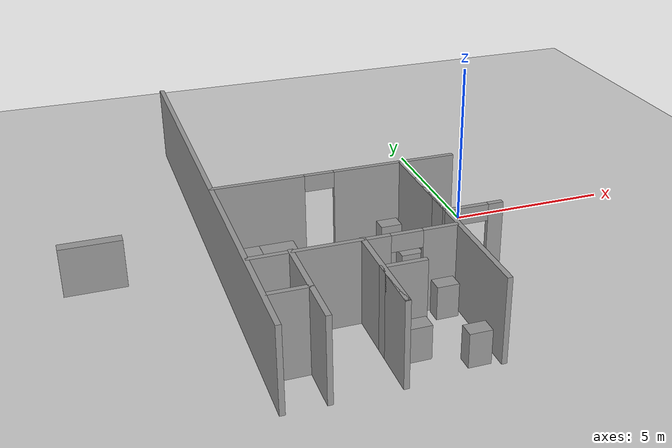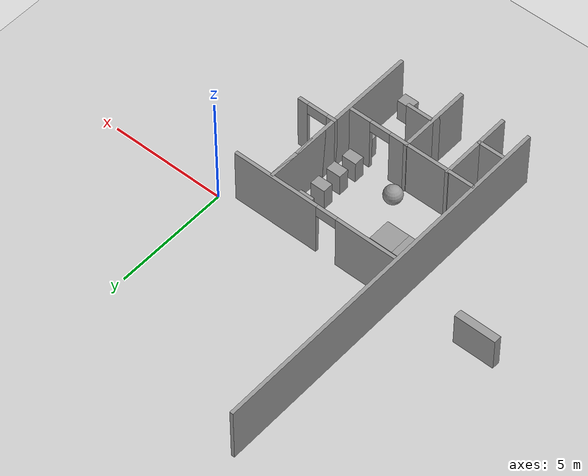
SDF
<sdf version="1.7">
 <world name="default">
  <model name="ground_plane">
   <static>1</static>
   <link name="link">
    <collision name="collision">
     <geometry><plane><normal>0 0 1</normal><size>100 100</size></plane></geometry>
     <surface>
      <contact><collide_bitmask>65535</collide_bitmask></contact>
      <friction><ode><mu>100</mu><mu2>50</mu2></ode></friction>
     </surface>
    </collision>
    <visual name="visual">
     <cast_shadows>0</cast_shadows>
     <geometry><plane><normal>0 0 1</normal><size>100 100</size></plane></geometry>
     <material>
      <script><uri>file://media/materials/scripts/gazebo.material</uri><name>Gazebo/Grey</name></script>
     </material>
    </visual>
   </link>
  </model>
  <model name="Untitled">
   <link name="Wall_23">
    <pose>-4.29593 -0.649108 0 0 -0 0</pose>
    <visual name="Wall_23_Visual_0">
     <pose>-2.35479 0 1.25 0 -0 0</pose>
     <geometry><box><size>2.79042 0.15 2.5</size></box></geometry>
     <material>
      <script><uri>file://media/materials/scripts/gazebo.material</uri><name>Gazebo/Grey</name></script>
      <ambient>1 1 1 1</ambient>
      <shader type="pixel"/>
     </material>
     <meta><layer>0</layer></meta>
    </visual>
    <visual name="Wall_23_Visual_1">
     <pose>1.84521 0 1.25 0 -0 0</pose>
     <geometry><box><size>3.80958 0.15 2.5</size></box></geometry>
     <material>
      <script><uri>file://media/materials/scripts/gazebo.material</uri><name>Gazebo/Grey</name></script>
      <ambient>1 1 1 1</ambient>
      <shader type="pixel"/>
     </material>
     <meta><layer>0</layer></meta>
    </visual>
    <visual name="Wall_23_Visual_2">
     <pose>-0.509576 0 2.25 0 -0 0</pose>
     <geometry><box><size>0.9 0.15 0.5</size></box></geometry>
     <material>
      <script><uri>file://media/materials/scripts/gazebo.material</uri><name>Gazebo/Grey</name></script>
      <ambient>1 1 1 1</ambient>
      <shader type="pixel"/>
     </material>
     <meta><layer>0</layer></meta>
    </visual>
    <collision name="Wall_23_Collision_0">
     <pose>-2.35479 0 1.25 0 -0 0</pose>
     <geometry><box><size>2.79042 0.15 2.5</size></box></geometry>
     <surface>
      <friction>
       <ode><mu>1</mu><mu2>1</mu2><fdir1>0 0 0</fdir1><slip1>0</slip1><slip2>0</slip2></ode>
       <torsional>
        <coefficient>1</coefficient>
        <patch_radius>0</patch_radius>
        <surface_radius>0</surface_radius>
        <use_patch_radius>1</use_patch_radius>
        <ode><slip>0</slip></ode>
       </torsional>
      </friction>
      <bounce><restitution_coefficient>0</restitution_coefficient><threshold>1e+06</threshold></bounce>
      <contact>
       <collide_without_contact>0</collide_without_contact>
       <collide_without_contact_bitmask>1</collide_without_contact_bitmask>
       <collide_bitmask>1</collide_bitmask>
       <ode>
        <soft_cfm>0</soft_cfm>
        <soft_erp>0.2</soft_erp>
        <kp>1e+13</kp>
        <kd>1</kd>
        <max_vel>0.01</max_vel>
        <min_depth>0</min_depth>
       </ode>
       <bullet>
        <split_impulse>1</split_impulse>
        <split_impulse_penetration_threshold>-0.01</split_impulse_penetration_threshold>
        <soft_cfm>0</soft_cfm>
        <soft_erp>0.2</soft_erp>
        <kp>1e+13</kp>
        <kd>1</kd>
       </bullet>
      </contact>
     </surface>
    </collision>
    <collision name="Wall_23_Collision_1">
     <pose>1.84521 0 1.25 0 -0 0</pose>
     <geometry><box><size>3.80958 0.15 2.5</size></box></geometry>
     <surface>
      <friction>
       <ode><mu>1</mu><mu2>1</mu2><fdir1>0 0 0</fdir1><slip1>0</slip1><slip2>0</slip2></ode>
       <torsional>
        <coefficient>1</coefficient>
        <patch_radius>0</patch_radius>
        <surface_radius>0</surface_radius>
        <use_patch_radius>1</use_patch_radius>
        <ode><slip>0</slip></ode>
       </torsional>
      </friction>
      <bounce><restitution_coefficient>0</restitution_coefficient><threshold>1e+06</threshold></bounce>
      <contact>
       <collide_without_contact>0</collide_without_contact>
       <collide_without_contact_bitmask>1</collide_without_contact_bitmask>
       <collide_bitmask>1</collide_bitmask>
       <ode>
        <soft_cfm>0</soft_cfm>
        <soft_erp>0.2</soft_erp>
        <kp>1e+13</kp>
        <kd>1</kd>
        <max_vel>0.01</max_vel>
        <min_depth>0</min_depth>
       </ode>
       <bullet>
        <split_impulse>1</split_impulse>
        <split_impulse_penetration_threshold>-0.01</split_impulse_penetration_threshold>
        <soft_cfm>0</soft_cfm>
        <soft_erp>0.2</soft_erp>
        <kp>1e+13</kp>
        <kd>1</kd>
       </bullet>
      </contact>
     </surface>
    </collision>
    <collision name="Wall_23_Collision_2">
     <pose>-0.509576 0 2.25 0 -0 0</pose>
     <geometry><box><size>0.9 0.15 0.5</size></box></geometry>
     <surface>
      <friction>
       <ode><mu>1</mu><mu2>1</mu2><fdir1>0 0 0</fdir1><slip1>0</slip1><slip2>0</slip2></ode>
       <torsional>
        <coefficient>1</coefficient>
        <patch_radius>0</patch_radius>
        <surface_radius>0</surface_radius>
        <use_patch_radius>1</use_patch_radius>
        <ode><slip>0</slip></ode>
       </torsional>
      </friction>
      <bounce><restitution_coefficient>0</restitution_coefficient><threshold>1e+06</threshold></bounce>
      <contact>
       <collide_without_contact>0</collide_without_contact>
       <collide_without_contact_bitmask>1</collide_without_contact_bitmask>
       <collide_bitmask>1</collide_bitmask>
       <ode>
        <soft_cfm>0</soft_cfm>
        <soft_erp>0.2</soft_erp>
        <kp>1e+13</kp>
        <kd>1</kd>
        <max_vel>0.01</max_vel>
        <min_depth>0</min_depth>
       </ode>
       <bullet>
        <split_impulse>1</split_impulse>
        <split_impulse_penetration_threshold>-0.01</split_impulse_penetration_threshold>
        <soft_cfm>0</soft_cfm>
        <soft_erp>0.2</soft_erp>
        <kp>1e+13</kp>
        <kd>1</kd>
       </bullet>
      </contact>
     </surface>
    </collision>
   </link>
   <link name="Wall_26">
    <pose>-1.42928 -4.08053 0 0 -0 3.14159</pose>
    <visual name="Wall_26_Visual_0">
     <pose>-0.650197 0 1.25 0 -0 0</pose>
     <geometry><box><size>0.449606 0.15 2.5</size></box></geometry>
     <material>
      <script><uri>file://media/materials/scripts/gazebo.material</uri><name>Gazebo/Grey</name></script>
      <ambient>1 1 1 1</ambient>
      <shader type="pixel"/>
     </material>
     <meta><layer>0</layer></meta>
    </visual>
    <visual name="Wall_26_Visual_1">
     <pose>0.674803 0 1.25 0 -0 0</pose>
     <geometry><box><size>0.400394 0.15 2.5</size></box></geometry>
     <material>
      <script><uri>file://media/materials/scripts/gazebo.material</uri><name>Gazebo/Grey</name></script>
      <ambient>1 1 1 1</ambient>
      <shader type="pixel"/>
     </material>
     <meta><layer>0</layer></meta>
    </visual>
    <visual name="Wall_26_Visual_2">
     <pose>0.024606 0 2.25 0 -0 0</pose>
     <geometry><box><size>0.9 0.15 0.5</size></box></geometry>
     <material>
      <script><uri>file://media/materials/scripts/gazebo.material</uri><name>Gazebo/Grey</name></script>
      <ambient>1 1 1 1</ambient>
      <shader type="pixel"/>
     </material>
     <meta><layer>0</layer></meta>
    </visual>
    <collision name="Wall_26_Collision_0">
     <pose>-0.650197 0 1.25 0 -0 0</pose>
     <geometry><box><size>0.449606 0.15 2.5</size></box></geometry>
     <surface>
      <friction>
       <ode><mu>1</mu><mu2>1</mu2><fdir1>0 0 0</fdir1><slip1>0</slip1><slip2>0</slip2></ode>
       <torsional>
        <coefficient>1</coefficient>
        <patch_radius>0</patch_radius>
        <surface_radius>0</surface_radius>
        <use_patch_radius>1</use_patch_radius>
        <ode><slip>0</slip></ode>
       </torsional>
      </friction>
      <bounce><restitution_coefficient>0</restitution_coefficient><threshold>1e+06</threshold></bounce>
      <contact>
       <collide_without_contact>0</collide_without_contact>
       <collide_without_contact_bitmask>1</collide_without_contact_bitmask>
       <collide_bitmask>1</collide_bitmask>
       <ode>
        <soft_cfm>0</soft_cfm>
        <soft_erp>0.2</soft_erp>
        <kp>1e+13</kp>
        <kd>1</kd>
        <max_vel>0.01</max_vel>
        <min_depth>0</min_depth>
       </ode>
       <bullet>
        <split_impulse>1</split_impulse>
        <split_impulse_penetration_threshold>-0.01</split_impulse_penetration_threshold>
        <soft_cfm>0</soft_cfm>
        <soft_erp>0.2</soft_erp>
        <kp>1e+13</kp>
        <kd>1</kd>
       </bullet>
      </contact>
     </surface>
    </collision>
    <collision name="Wall_26_Collision_1">
     <pose>0.674803 0 1.25 0 -0 0</pose>
     <geometry><box><size>0.400394 0.15 2.5</size></box></geometry>
     <surface>
      <friction>
       <ode><mu>1</mu><mu2>1</mu2><fdir1>0 0 0</fdir1><slip1>0</slip1><slip2>0</slip2></ode>
       <torsional>
        <coefficient>1</coefficient>
        <patch_radius>0</patch_radius>
        <surface_radius>0</surface_radius>
        <use_patch_radius>1</use_patch_radius>
        <ode><slip>0</slip></ode>
       </torsional>
      </friction>
      <bounce><restitution_coefficient>0</restitution_coefficient><threshold>1e+06</threshold></bounce>
      <contact>
       <collide_without_contact>0</collide_without_contact>
       <collide_without_contact_bitmask>1</collide_without_contact_bitmask>
       <collide_bitmask>1</collide_bitmask>
       <ode>
        <soft_cfm>0</soft_cfm>
        <soft_erp>0.2</soft_erp>
        <kp>1e+13</kp>
        <kd>1</kd>
        <max_vel>0.01</max_vel>
        <min_depth>0</min_depth>
       </ode>
       <bullet>
        <split_impulse>1</split_impulse>
        <split_impulse_penetration_threshold>-0.01</split_impulse_penetration_threshold>
        <soft_cfm>0</soft_cfm>
        <soft_erp>0.2</soft_erp>
        <kp>1e+13</kp>
        <kd>1</kd>
       </bullet>
      </contact>
     </surface>
    </collision>
    <collision name="Wall_26_Collision_2">
     <pose>0.024606 0 2.25 0 -0 0</pose>
     <geometry><box><size>0.9 0.15 0.5</size></box></geometry>
     <surface>
      <friction>
       <ode><mu>1</mu><mu2>1</mu2><fdir1>0 0 0</fdir1><slip1>0</slip1><slip2>0</slip2></ode>
       <torsional>
        <coefficient>1</coefficient>
        <patch_radius>0</patch_radius>
        <surface_radius>0</surface_radius>
        <use_patch_radius>1</use_patch_radius>
        <ode><slip>0</slip></ode>
       </torsional>
      </friction>
      <bounce><restitution_coefficient>0</restitution_coefficient><threshold>1e+06</threshold></bounce>
      <contact>
       <collide_without_contact>0</collide_without_contact>
       <collide_without_contact_bitmask>1</collide_without_contact_bitmask>
       <collide_bitmask>1</collide_bitmask>
       <ode>
        <soft_cfm>0</soft_cfm>
        <soft_erp>0.2</soft_erp>
        <kp>1e+13</kp>
        <kd>1</kd>
        <max_vel>0.01</max_vel>
        <min_depth>0</min_depth>
       </ode>
       <bullet>
        <split_impulse>1</split_impulse>
        <split_impulse_penetration_threshold>-0.01</split_impulse_penetration_threshold>
        <soft_cfm>0</soft_cfm>
        <soft_erp>0.2</soft_erp>
        <kp>1e+13</kp>
        <kd>1</kd>
       </bullet>
      </contact>
     </surface>
    </collision>
   </link>
   <link name="Wall_27">
    <pose>-2.22928 -2.40553 0 0 -0 1.5708</pose>
    <visual name="Wall_27_Visual">
     <pose>0 0 1.25 0 -0 0</pose>
     <geometry><box><size>3.5 0.15 2.5</size></box></geometry>
     <material>
      <script><uri>file://media/materials/scripts/gazebo.material</uri><name>Gazebo/Grey</name></script>
      <ambient>1 1 1 1</ambient>
      <shader type="pixel"/>
     </material>
     <meta><layer>0</layer></meta>
    </visual>
    <collision name="Wall_27_Collision">
     <pose>0 0 1.25 0 -0 0</pose>
     <geometry><box><size>3.5 0.15 2.5</size></box></geometry>
     <surface>
      <friction>
       <ode><mu>1</mu><mu2>1</mu2><fdir1>0 0 0</fdir1><slip1>0</slip1><slip2>0</slip2></ode>
       <torsional>
        <coefficient>1</coefficient>
        <patch_radius>0</patch_radius>
        <surface_radius>0</surface_radius>
        <use_patch_radius>1</use_patch_radius>
        <ode><slip>0</slip></ode>
       </torsional>
      </friction>
      <bounce><restitution_coefficient>0</restitution_coefficient><threshold>1e+06</threshold></bounce>
      <contact>
       <collide_without_contact>0</collide_without_contact>
       <collide_without_contact_bitmask>1</collide_without_contact_bitmask>
       <collide_bitmask>1</collide_bitmask>
       <ode>
        <soft_cfm>0</soft_cfm>
        <soft_erp>0.2</soft_erp>
        <kp>1e+13</kp>
        <kd>1</kd>
        <max_vel>0.01</max_vel>
        <min_depth>0</min_depth>
       </ode>
       <bullet>
        <split_impulse>1</split_impulse>
        <split_impulse_penetration_threshold>-0.01</split_impulse_penetration_threshold>
        <soft_cfm>0</soft_cfm>
        <soft_erp>0.2</soft_erp>
        <kp>1e+13</kp>
        <kd>1</kd>
       </bullet>
      </contact>
     </surface>
    </collision>
   </link>
   <link name="Wall_28">
    <pose>-2.22928 -4.28053 0 0 0 -1.5708</pose>
    <visual name="Wall_28_Visual_0">
     <pose>-2.94881 0 1.25 0 -0 0</pose>
     <geometry><box><size>1.35239 0.15 2.5</size></box></geometry>
     <material>
      <script><uri>file://media/materials/scripts/gazebo.material</uri><name>Gazebo/Grey</name></script>
      <ambient>1 1 1 1</ambient>
      <shader type="pixel"/>
     </material>
     <meta><layer>0</layer></meta>
    </visual>
    <visual name="Wall_28_Visual_1">
     <pose>1.12619 0 1.25 0 -0 0</pose>
     <geometry><box><size>4.99761 0.15 2.5</size></box></geometry>
     <material>
      <script><uri>file://media/materials/scripts/gazebo.material</uri><name>Gazebo/Grey</name></script>
      <ambient>1 1 1 1</ambient>
      <shader type="pixel"/>
     </material>
     <meta><layer>0</layer></meta>
    </visual>
    <visual name="Wall_28_Visual_2">
     <pose>-1.82261 0 2.25 0 -0 0</pose>
     <geometry><box><size>0.9 0.15 0.5</size></box></geometry>
     <material>
      <script><uri>file://media/materials/scripts/gazebo.material</uri><name>Gazebo/Grey</name></script>
      <ambient>1 1 1 1</ambient>
      <shader type="pixel"/>
     </material>
     <meta><layer>0</layer></meta>
    </visual>
    <collision name="Wall_28_Collision_0">
     <pose>-2.94881 0 1.25 0 -0 0</pose>
     <geometry><box><size>1.35239 0.15 2.5</size></box></geometry>
     <surface>
      <friction>
       <ode><mu>1</mu><mu2>1</mu2><fdir1>0 0 0</fdir1><slip1>0</slip1><slip2>0</slip2></ode>
       <torsional>
        <coefficient>1</coefficient>
        <patch_radius>0</patch_radius>
        <surface_radius>0</surface_radius>
        <use_patch_radius>1</use_patch_radius>
        <ode><slip>0</slip></ode>
       </torsional>
      </friction>
      <bounce><restitution_coefficient>0</restitution_coefficient><threshold>1e+06</threshold></bounce>
      <contact>
       <collide_without_contact>0</collide_without_contact>
       <collide_without_contact_bitmask>1</collide_without_contact_bitmask>
       <collide_bitmask>1</collide_bitmask>
       <ode>
        <soft_cfm>0</soft_cfm>
        <soft_erp>0.2</soft_erp>
        <kp>1e+13</kp>
        <kd>1</kd>
        <max_vel>0.01</max_vel>
        <min_depth>0</min_depth>
       </ode>
       <bullet>
        <split_impulse>1</split_impulse>
        <split_impulse_penetration_threshold>-0.01</split_impulse_penetration_threshold>
        <soft_cfm>0</soft_cfm>
        <soft_erp>0.2</soft_erp>
        <kp>1e+13</kp>
        <kd>1</kd>
       </bullet>
      </contact>
     </surface>
    </collision>
    <collision name="Wall_28_Collision_1">
     <pose>1.12619 0 1.25 0 -0 0</pose>
     <geometry><box><size>4.99761 0.15 2.5</size></box></geometry>
     <surface>
      <friction>
       <ode><mu>1</mu><mu2>1</mu2><fdir1>0 0 0</fdir1><slip1>0</slip1><slip2>0</slip2></ode>
       <torsional>
        <coefficient>1</coefficient>
        <patch_radius>0</patch_radius>
        <surface_radius>0</surface_radius>
        <use_patch_radius>1</use_patch_radius>
        <ode><slip>0</slip></ode>
       </torsional>
      </friction>
      <bounce><restitution_coefficient>0</restitution_coefficient><threshold>1e+06</threshold></bounce>
      <contact>
       <collide_without_contact>0</collide_without_contact>
       <collide_without_contact_bitmask>1</collide_without_contact_bitmask>
       <collide_bitmask>1</collide_bitmask>
       <ode>
        <soft_cfm>0</soft_cfm>
        <soft_erp>0.2</soft_erp>
        <kp>1e+13</kp>
        <kd>1</kd>
        <max_vel>0.01</max_vel>
        <min_depth>0</min_depth>
       </ode>
       <bullet>
        <split_impulse>1</split_impulse>
        <split_impulse_penetration_threshold>-0.01</split_impulse_penetration_threshold>
        <soft_cfm>0</soft_cfm>
        <soft_erp>0.2</soft_erp>
        <kp>1e+13</kp>
        <kd>1</kd>
       </bullet>
      </contact>
     </surface>
    </collision>
    <collision name="Wall_28_Collision_2">
     <pose>-1.82261 0 2.25 0 -0 0</pose>
     <geometry><box><size>0.9 0.15 0.5</size></box></geometry>
     <surface>
      <friction>
       <ode><mu>1</mu><mu2>1</mu2><fdir1>0 0 0</fdir1><slip1>0</slip1><slip2>0</slip2></ode>
       <torsional>
        <coefficient>1</coefficient>
        <patch_radius>0</patch_radius>
        <surface_radius>0</surface_radius>
        <use_patch_radius>1</use_patch_radius>
        <ode><slip>0</slip></ode>
       </torsional>
      </friction>
      <bounce><restitution_coefficient>0</restitution_coefficient><threshold>1e+06</threshold></bounce>
      <contact>
       <collide_without_contact>0</collide_without_contact>
       <collide_without_contact_bitmask>1</collide_without_contact_bitmask>
       <collide_bitmask>1</collide_bitmask>
       <ode>
        <soft_cfm>0</soft_cfm>
        <soft_erp>0.2</soft_erp>
        <kp>1e+13</kp>
        <kd>1</kd>
        <max_vel>0.01</max_vel>
        <min_depth>0</min_depth>
       </ode>
       <bullet>
        <split_impulse>1</split_impulse>
        <split_impulse_penetration_threshold>-0.01</split_impulse_penetration_threshold>
        <soft_cfm>0</soft_cfm>
        <soft_erp>0.2</soft_erp>
        <kp>1e+13</kp>
        <kd>1</kd>
       </bullet>
      </contact>
     </surface>
    </collision>
   </link>
   <link name="Wall_3">
    <pose>-7.99753 -0.035444 0 0 -0 1.5708</pose>
    <visual name="Wall_3_Visual">
     <pose>0 0 1.25 0 -0 0</pose>
     <geometry><box><size>16 0.15 2.5</size></box></geometry>
     <material>
      <script><uri>file://media/materials/scripts/gazebo.material</uri><name>Gazebo/Grey</name></script>
      <ambient>1 1 1 1</ambient>
      <shader type="pixel"/>
     </material>
     <meta><layer>0</layer></meta>
    </visual>
    <collision name="Wall_3_Collision">
     <pose>0 0 1.25 0 -0 0</pose>
     <geometry><box><size>16 0.15 2.5</size></box></geometry>
     <surface>
      <friction>
       <ode><mu>1</mu><mu2>1</mu2><fdir1>0 0 0</fdir1><slip1>0</slip1><slip2>0</slip2></ode>
       <torsional>
        <coefficient>1</coefficient>
        <patch_radius>0</patch_radius>
        <surface_radius>0</surface_radius>
        <use_patch_radius>1</use_patch_radius>
        <ode><slip>0</slip></ode>
       </torsional>
      </friction>
      <bounce><restitution_coefficient>0</restitution_coefficient><threshold>1e+06</threshold></bounce>
      <contact>
       <collide_without_contact>0</collide_without_contact>
       <collide_without_contact_bitmask>1</collide_without_contact_bitmask>
       <collide_bitmask>1</collide_bitmask>
       <ode>
        <soft_cfm>0</soft_cfm>
        <soft_erp>0.2</soft_erp>
        <kp>1e+13</kp>
        <kd>1</kd>
        <max_vel>0.01</max_vel>
        <min_depth>0</min_depth>
       </ode>
       <bullet>
        <split_impulse>1</split_impulse>
        <split_impulse_penetration_threshold>-0.01</split_impulse_penetration_threshold>
        <soft_cfm>0</soft_cfm>
        <soft_erp>0.2</soft_erp>
        <kp>1e+13</kp>
        <kd>1</kd>
       </bullet>
      </contact>
     </surface>
    </collision>
   </link>
   <link name="Wall_30">
    <pose>-5.13169 -4.90514 0 0 -0 3.14159</pose>
    <visual name="Wall_30_Visual_0">
     <pose>-2.37089 0 1.25 0 -0 0</pose>
     <geometry><box><size>1.00821 0.15 2.5</size></box></geometry>
     <material>
      <script><uri>file://media/materials/scripts/gazebo.material</uri><name>Gazebo/Grey</name></script>
      <ambient>1 1 1 1</ambient>
      <shader type="pixel"/>
     </material>
     <meta><layer>0</layer></meta>
    </visual>
    <visual name="Wall_30_Visual_1">
     <pose>0.954105 0 1.25 0 -0 0</pose>
     <geometry><box><size>3.84179 0.15 2.5</size></box></geometry>
     <material>
      <script><uri>file://media/materials/scripts/gazebo.material</uri><name>Gazebo/Grey</name></script>
      <ambient>1 1 1 1</ambient>
      <shader type="pixel"/>
     </material>
     <meta><layer>0</layer></meta>
    </visual>
    <visual name="Wall_30_Visual_2">
     <pose>-1.41679 0 2.25 0 -0 0</pose>
     <geometry><box><size>0.9 0.15 0.5</size></box></geometry>
     <material>
      <script><uri>file://media/materials/scripts/gazebo.material</uri><name>Gazebo/Grey</name></script>
      <ambient>1 1 1 1</ambient>
      <shader type="pixel"/>
     </material>
     <meta><layer>0</layer></meta>
    </visual>
    <collision name="Wall_30_Collision_0">
     <pose>-2.37089 0 1.25 0 -0 0</pose>
     <geometry><box><size>1.00821 0.15 2.5</size></box></geometry>
     <surface>
      <friction>
       <ode><mu>1</mu><mu2>1</mu2><fdir1>0 0 0</fdir1><slip1>0</slip1><slip2>0</slip2></ode>
       <torsional>
        <coefficient>1</coefficient>
        <patch_radius>0</patch_radius>
        <surface_radius>0</surface_radius>
        <use_patch_radius>1</use_patch_radius>
        <ode><slip>0</slip></ode>
       </torsional>
      </friction>
      <bounce><restitution_coefficient>0</restitution_coefficient><threshold>1e+06</threshold></bounce>
      <contact>
       <collide_without_contact>0</collide_without_contact>
       <collide_without_contact_bitmask>1</collide_without_contact_bitmask>
       <collide_bitmask>1</collide_bitmask>
       <ode>
        <soft_cfm>0</soft_cfm>
        <soft_erp>0.2</soft_erp>
        <kp>1e+13</kp>
        <kd>1</kd>
        <max_vel>0.01</max_vel>
        <min_depth>0</min_depth>
       </ode>
       <bullet>
        <split_impulse>1</split_impulse>
        <split_impulse_penetration_threshold>-0.01</split_impulse_penetration_threshold>
        <soft_cfm>0</soft_cfm>
        <soft_erp>0.2</soft_erp>
        <kp>1e+13</kp>
        <kd>1</kd>
       </bullet>
      </contact>
     </surface>
    </collision>
    <collision name="Wall_30_Collision_1">
     <pose>0.954105 0 1.25 0 -0 0</pose>
     <geometry><box><size>3.84179 0.15 2.5</size></box></geometry>
     <surface>
      <friction>
       <ode><mu>1</mu><mu2>1</mu2><fdir1>0 0 0</fdir1><slip1>0</slip1><slip2>0</slip2></ode>
       <torsional>
        <coefficient>1</coefficient>
        <patch_radius>0</patch_radius>
        <surface_radius>0</surface_radius>
        <use_patch_radius>1</use_patch_radius>
        <ode><slip>0</slip></ode>
       </torsional>
      </friction>
      <bounce><restitution_coefficient>0</restitution_coefficient><threshold>1e+06</threshold></bounce>
      <contact>
       <collide_without_contact>0</collide_without_contact>
       <collide_without_contact_bitmask>1</collide_without_contact_bitmask>
       <collide_bitmask>1</collide_bitmask>
       <ode>
        <soft_cfm>0</soft_cfm>
        <soft_erp>0.2</soft_erp>
        <kp>1e+13</kp>
        <kd>1</kd>
        <max_vel>0.01</max_vel>
        <min_depth>0</min_depth>
       </ode>
       <bullet>
        <split_impulse>1</split_impulse>
        <split_impulse_penetration_threshold>-0.01</split_impulse_penetration_threshold>
        <soft_cfm>0</soft_cfm>
        <soft_erp>0.2</soft_erp>
        <kp>1e+13</kp>
        <kd>1</kd>
       </bullet>
      </contact>
     </surface>
    </collision>
    <collision name="Wall_30_Collision_2">
     <pose>-1.41679 0 2.25 0 -0 0</pose>
     <geometry><box><size>0.9 0.15 0.5</size></box></geometry>
     <surface>
      <friction>
       <ode><mu>1</mu><mu2>1</mu2><fdir1>0 0 0</fdir1><slip1>0</slip1><slip2>0</slip2></ode>
       <torsional>
        <coefficient>1</coefficient>
        <patch_radius>0</patch_radius>
        <surface_radius>0</surface_radius>
        <use_patch_radius>1</use_patch_radius>
        <ode><slip>0</slip></ode>
       </torsional>
      </friction>
      <bounce><restitution_coefficient>0</restitution_coefficient><threshold>1e+06</threshold></bounce>
      <contact>
       <collide_without_contact>0</collide_without_contact>
       <collide_without_contact_bitmask>1</collide_without_contact_bitmask>
       <collide_bitmask>1</collide_bitmask>
       <ode>
        <soft_cfm>0</soft_cfm>
        <soft_erp>0.2</soft_erp>
        <kp>1e+13</kp>
        <kd>1</kd>
        <max_vel>0.01</max_vel>
        <min_depth>0</min_depth>
       </ode>
       <bullet>
        <split_impulse>1</split_impulse>
        <split_impulse_penetration_threshold>-0.01</split_impulse_penetration_threshold>
        <soft_cfm>0</soft_cfm>
        <soft_erp>0.2</soft_erp>
        <kp>1e+13</kp>
        <kd>1</kd>
       </bullet>
      </contact>
     </surface>
    </collision>
   </link>
   <link name="Wall_32">
    <pose>-6.82712 -6.41416 0 0 -0 1.5708</pose>
    <visual name="Wall_32_Visual">
     <pose>0 0 1.25 0 -0 0</pose>
     <geometry><box><size>3.25 0.15 2.5</size></box></geometry>
     <material>
      <script><uri>file://media/materials/scripts/gazebo.material</uri><name>Gazebo/Grey</name></script>
      <ambient>1 1 1 1</ambient>
      <shader type="pixel"/>
     </material>
     <meta><layer>0</layer></meta>
    </visual>
    <collision name="Wall_32_Collision">
     <pose>0 0 1.25 0 -0 0</pose>
     <geometry><box><size>3.25 0.15 2.5</size></box></geometry>
     <surface>
      <friction>
       <ode><mu>1</mu><mu2>1</mu2><fdir1>0 0 0</fdir1><slip1>0</slip1><slip2>0</slip2></ode>
       <torsional>
        <coefficient>1</coefficient>
        <patch_radius>0</patch_radius>
        <surface_radius>0</surface_radius>
        <use_patch_radius>1</use_patch_radius>
        <ode><slip>0</slip></ode>
       </torsional>
      </friction>
      <bounce><restitution_coefficient>0</restitution_coefficient><threshold>1e+06</threshold></bounce>
      <contact>
       <collide_without_contact>0</collide_without_contact>
       <collide_without_contact_bitmask>1</collide_without_contact_bitmask>
       <collide_bitmask>1</collide_bitmask>
       <ode>
        <soft_cfm>0</soft_cfm>
        <soft_erp>0.2</soft_erp>
        <kp>1e+13</kp>
        <kd>1</kd>
        <max_vel>0.01</max_vel>
        <min_depth>0</min_depth>
       </ode>
       <bullet>
        <split_impulse>1</split_impulse>
        <split_impulse_penetration_threshold>-0.01</split_impulse_penetration_threshold>
        <soft_cfm>0</soft_cfm>
        <soft_erp>0.2</soft_erp>
        <kp>1e+13</kp>
        <kd>1</kd>
       </bullet>
      </contact>
     </surface>
    </collision>
   </link>
   <link name="Wall_34">
    <pose>-7.39433 -6.66075 0 0 -0 0</pose>
    <visual name="Wall_34_Visual">
     <pose>0 0 1.25 0 -0 0</pose>
     <geometry><box><size>1.25 0.15 2.5</size></box></geometry>
     <material>
      <script><uri>file://media/materials/scripts/gazebo.material</uri><name>Gazebo/Grey</name></script>
      <ambient>1 1 1 1</ambient>
      <shader type="pixel"/>
     </material>
     <meta><layer>0</layer></meta>
    </visual>
    <collision name="Wall_34_Collision">
     <pose>0 0 1.25 0 -0 0</pose>
     <geometry><box><size>1.25 0.15 2.5</size></box></geometry>
     <surface>
      <friction>
       <ode><mu>1</mu><mu2>1</mu2><fdir1>0 0 0</fdir1><slip1>0</slip1><slip2>0</slip2></ode>
       <torsional>
        <coefficient>1</coefficient>
        <patch_radius>0</patch_radius>
        <surface_radius>0</surface_radius>
        <use_patch_radius>1</use_patch_radius>
        <ode><slip>0</slip></ode>
       </torsional>
      </friction>
      <bounce><restitution_coefficient>0</restitution_coefficient><threshold>1e+06</threshold></bounce>
      <contact>
       <collide_without_contact>0</collide_without_contact>
       <collide_without_contact_bitmask>1</collide_without_contact_bitmask>
       <collide_bitmask>1</collide_bitmask>
       <ode>
        <soft_cfm>0</soft_cfm>
        <soft_erp>0.2</soft_erp>
        <kp>1e+13</kp>
        <kd>1</kd>
        <max_vel>0.01</max_vel>
        <min_depth>0</min_depth>
       </ode>
       <bullet>
        <split_impulse>1</split_impulse>
        <split_impulse_penetration_threshold>-0.01</split_impulse_penetration_threshold>
        <soft_cfm>0</soft_cfm>
        <soft_erp>0.2</soft_erp>
        <kp>1e+13</kp>
        <kd>1</kd>
       </bullet>
      </contact>
     </surface>
    </collision>
   </link>
   <link name="Wall_36">
    <pose>-4.91191 -6.42854 0 0 0 -1.5708</pose>
    <visual name="Wall_36_Visual">
     <pose>0 0 1.25 0 -0 0</pose>
     <geometry><box><size>3.25 0.15 2.5</size></box></geometry>
     <material>
      <script><uri>file://media/materials/scripts/gazebo.material</uri><name>Gazebo/Grey</name></script>
      <ambient>1 1 1 1</ambient>
      <shader type="pixel"/>
     </material>
     <meta><layer>0</layer></meta>
    </visual>
    <collision name="Wall_36_Collision">
     <pose>0 0 1.25 0 -0 0</pose>
     <geometry><box><size>3.25 0.15 2.5</size></box></geometry>
     <surface>
      <friction>
       <ode><mu>1</mu><mu2>1</mu2><fdir1>0 0 0</fdir1><slip1>0</slip1><slip2>0</slip2></ode>
       <torsional>
        <coefficient>1</coefficient>
        <patch_radius>0</patch_radius>
        <surface_radius>0</surface_radius>
        <use_patch_radius>1</use_patch_radius>
        <ode><slip>0</slip></ode>
       </torsional>
      </friction>
      <bounce><restitution_coefficient>0</restitution_coefficient><threshold>1e+06</threshold></bounce>
      <contact>
       <collide_without_contact>0</collide_without_contact>
       <collide_without_contact_bitmask>1</collide_without_contact_bitmask>
       <collide_bitmask>1</collide_bitmask>
       <ode>
        <soft_cfm>0</soft_cfm>
        <soft_erp>0.2</soft_erp>
        <kp>1e+13</kp>
        <kd>1</kd>
        <max_vel>0.01</max_vel>
        <min_depth>0</min_depth>
       </ode>
       <bullet>
        <split_impulse>1</split_impulse>
        <split_impulse_penetration_threshold>-0.01</split_impulse_penetration_threshold>
        <soft_cfm>0</soft_cfm>
        <soft_erp>0.2</soft_erp>
        <kp>1e+13</kp>
        <kd>1</kd>
       </bullet>
      </contact>
     </surface>
    </collision>
   </link>
   <link name="Wall_37">
    <pose>-4.91191 -7.17854 0 0 -0 1.5708</pose>
    <visual name="Wall_37_Visual_0">
     <pose>-0.656309 0 1.25 0 -0 0</pose>
     <geometry><box><size>0.437383 0.15 2.5</size></box></geometry>
     <material>
      <script><uri>file://media/materials/scripts/gazebo.material</uri><name>Gazebo/Grey</name></script>
      <ambient>1 1 1 1</ambient>
      <shader type="pixel"/>
     </material>
     <meta><layer>0</layer></meta>
    </visual>
    <visual name="Wall_37_Visual_1">
     <pose>0.668691 0 1.25 0 -0 0</pose>
     <geometry><box><size>0.412617 0.15 2.5</size></box></geometry>
     <material>
      <script><uri>file://media/materials/scripts/gazebo.material</uri><name>Gazebo/Grey</name></script>
      <ambient>1 1 1 1</ambient>
      <shader type="pixel"/>
     </material>
     <meta><layer>0</layer></meta>
    </visual>
    <visual name="Wall_37_Visual_2">
     <pose>0.012383 0 2.25 0 -0 0</pose>
     <geometry><box><size>0.9 0.15 0.5</size></box></geometry>
     <material>
      <script><uri>file://media/materials/scripts/gazebo.material</uri><name>Gazebo/Grey</name></script>
      <ambient>1 1 1 1</ambient>
      <shader type="pixel"/>
     </material>
     <meta><layer>0</layer></meta>
    </visual>
    <collision name="Wall_37_Collision_0">
     <pose>-0.656309 0 1.25 0 -0 0</pose>
     <geometry><box><size>0.437383 0.15 2.5</size></box></geometry>
     <surface>
      <friction>
       <ode><mu>1</mu><mu2>1</mu2><fdir1>0 0 0</fdir1><slip1>0</slip1><slip2>0</slip2></ode>
       <torsional>
        <coefficient>1</coefficient>
        <patch_radius>0</patch_radius>
        <surface_radius>0</surface_radius>
        <use_patch_radius>1</use_patch_radius>
        <ode><slip>0</slip></ode>
       </torsional>
      </friction>
      <bounce><restitution_coefficient>0</restitution_coefficient><threshold>1e+06</threshold></bounce>
      <contact>
       <collide_without_contact>0</collide_without_contact>
       <collide_without_contact_bitmask>1</collide_without_contact_bitmask>
       <collide_bitmask>1</collide_bitmask>
       <ode>
        <soft_cfm>0</soft_cfm>
        <soft_erp>0.2</soft_erp>
        <kp>1e+13</kp>
        <kd>1</kd>
        <max_vel>0.01</max_vel>
        <min_depth>0</min_depth>
       </ode>
       <bullet>
        <split_impulse>1</split_impulse>
        <split_impulse_penetration_threshold>-0.01</split_impulse_penetration_threshold>
        <soft_cfm>0</soft_cfm>
        <soft_erp>0.2</soft_erp>
        <kp>1e+13</kp>
        <kd>1</kd>
       </bullet>
      </contact>
     </surface>
    </collision>
    <collision name="Wall_37_Collision_1">
     <pose>0.668691 0 1.25 0 -0 0</pose>
     <geometry><box><size>0.412617 0.15 2.5</size></box></geometry>
     <surface>
      <friction>
       <ode><mu>1</mu><mu2>1</mu2><fdir1>0 0 0</fdir1><slip1>0</slip1><slip2>0</slip2></ode>
       <torsional>
        <coefficient>1</coefficient>
        <patch_radius>0</patch_radius>
        <surface_radius>0</surface_radius>
        <use_patch_radius>1</use_patch_radius>
        <ode><slip>0</slip></ode>
       </torsional>
      </friction>
      <bounce><restitution_coefficient>0</restitution_coefficient><threshold>1e+06</threshold></bounce>
      <contact>
       <collide_without_contact>0</collide_without_contact>
       <collide_without_contact_bitmask>1</collide_without_contact_bitmask>
       <collide_bitmask>1</collide_bitmask>
       <ode>
        <soft_cfm>0</soft_cfm>
        <soft_erp>0.2</soft_erp>
        <kp>1e+13</kp>
        <kd>1</kd>
        <max_vel>0.01</max_vel>
        <min_depth>0</min_depth>
       </ode>
       <bullet>
        <split_impulse>1</split_impulse>
        <split_impulse_penetration_threshold>-0.01</split_impulse_penetration_threshold>
        <soft_cfm>0</soft_cfm>
        <soft_erp>0.2</soft_erp>
        <kp>1e+13</kp>
        <kd>1</kd>
       </bullet>
      </contact>
     </surface>
    </collision>
    <collision name="Wall_37_Collision_2">
     <pose>0.012383 0 2.25 0 -0 0</pose>
     <geometry><box><size>0.9 0.15 0.5</size></box></geometry>
     <surface>
      <friction>
       <ode><mu>1</mu><mu2>1</mu2><fdir1>0 0 0</fdir1><slip1>0</slip1><slip2>0</slip2></ode>
       <torsional>
        <coefficient>1</coefficient>
        <patch_radius>0</patch_radius>
        <surface_radius>0</surface_radius>
        <use_patch_radius>1</use_patch_radius>
        <ode><slip>0</slip></ode>
       </torsional>
      </friction>
      <bounce><restitution_coefficient>0</restitution_coefficient><threshold>1e+06</threshold></bounce>
      <contact>
       <collide_without_contact>0</collide_without_contact>
       <collide_without_contact_bitmask>1</collide_without_contact_bitmask>
       <collide_bitmask>1</collide_bitmask>
       <ode>
        <soft_cfm>0</soft_cfm>
        <soft_erp>0.2</soft_erp>
        <kp>1e+13</kp>
        <kd>1</kd>
        <max_vel>0.01</max_vel>
        <min_depth>0</min_depth>
       </ode>
       <bullet>
        <split_impulse>1</split_impulse>
        <split_impulse_penetration_threshold>-0.01</split_impulse_penetration_threshold>
        <soft_cfm>0</soft_cfm>
        <soft_erp>0.2</soft_erp>
        <kp>1e+13</kp>
        <kd>1</kd>
       </bullet>
      </contact>
     </surface>
    </collision>
   </link>
   <link name="Wall_38">
    <pose>-4.36191 -6.37854 0 0 -0 0</pose>
    <visual name="Wall_38_Visual">
     <pose>0 0 1.25 0 -0 0</pose>
     <geometry><box><size>1.25 0.15 2.5</size></box></geometry>
     <material>
      <script><uri>file://media/materials/scripts/gazebo.material</uri><name>Gazebo/Grey</name></script>
      <ambient>1 1 1 1</ambient>
      <shader type="pixel"/>
     </material>
     <meta><layer>0</layer></meta>
    </visual>
    <collision name="Wall_38_Collision">
     <pose>0 0 1.25 0 -0 0</pose>
     <geometry><box><size>1.25 0.15 2.5</size></box></geometry>
     <surface>
      <friction>
       <ode><mu>1</mu><mu2>1</mu2><fdir1>0 0 0</fdir1><slip1>0</slip1><slip2>0</slip2></ode>
       <torsional>
        <coefficient>1</coefficient>
        <patch_radius>0</patch_radius>
        <surface_radius>0</surface_radius>
        <use_patch_radius>1</use_patch_radius>
        <ode><slip>0</slip></ode>
       </torsional>
      </friction>
      <bounce><restitution_coefficient>0</restitution_coefficient><threshold>1e+06</threshold></bounce>
      <contact>
       <collide_without_contact>0</collide_without_contact>
       <collide_without_contact_bitmask>1</collide_without_contact_bitmask>
       <collide_bitmask>1</collide_bitmask>
       <ode>
        <soft_cfm>0</soft_cfm>
        <soft_erp>0.2</soft_erp>
        <kp>1e+13</kp>
        <kd>1</kd>
        <max_vel>0.01</max_vel>
        <min_depth>0</min_depth>
       </ode>
       <bullet>
        <split_impulse>1</split_impulse>
        <split_impulse_penetration_threshold>-0.01</split_impulse_penetration_threshold>
        <soft_cfm>0</soft_cfm>
        <soft_erp>0.2</soft_erp>
        <kp>1e+13</kp>
        <kd>1</kd>
       </bullet>
      </contact>
     </surface>
    </collision>
   </link>
   <static>1</static>
   <pose>0.030064 0.19251 0 0 -0 0</pose>
  </model>
  <model name="unit_box">
   <pose>-6.39236 -1.99185 0.499995 -1e-05 -0 -0.000171</pose>
   <link name="link">
    <inertial>
     <mass>1</mass>
     <inertia>
      <ixx>0.166667</ixx>
      <ixy>0</ixy>
      <ixz>0</ixz>
      <iyy>0.166667</iyy>
      <iyz>0</iyz>
      <izz>0.166667</izz>
     </inertia>
    </inertial>
    <collision name="collision"><geometry><box><size>1 1 1</size></box></geometry></collision>
    <visual name="visual">
     <geometry><box><size>1 1 1</size></box></geometry>
     <material>
      <script><name>Gazebo/Grey</name><uri>file://media/materials/scripts/gazebo.material</uri></script>
     </material>
    </visual>
   </link>
  </model>
  <model name="unit_box_0">
   <pose>-7.39243 -1.99092 0.499995 -0 -1e-05 -4e-05</pose>
   <link name="link">
    <inertial>
     <mass>1</mass>
     <inertia>
      <ixx>0.166667</ixx>
      <ixy>0</ixy>
      <ixz>0</ixz>
      <iyy>0.166667</iyy>
      <iyz>0</iyz>
      <izz>0.166667</izz>
     </inertia>
    </inertial>
    <collision name="collision"><geometry><box><size>1 1 1</size></box></geometry></collision>
    <visual name="visual">
     <geometry><box><size>1 1 1</size></box></geometry>
     <material>
      <script><name>Gazebo/Grey</name><uri>file://media/materials/scripts/gazebo.material</uri></script>
     </material>
    </visual>
   </link>
  </model>
  <model name="unit_sphere">
   <pose>-4.92671 -3.96972 0.385234 0 -0 0</pose>
   <link name="link">
    <inertial>
     <mass>1</mass>
     <inertia><ixx>0.1</ixx><ixy>0</ixy><ixz>0</ixz><iyy>0.1</iyy><iyz>0</iyz><izz>0.1</izz></inertia>
    </inertial>
    <collision name="collision"><geometry><sphere><radius>0.385234</radius></sphere></geometry></collision>
    <visual name="visual">
     <geometry><sphere><radius>0.385234</radius></sphere></geometry>
     <material>
      <script><name>Gazebo/Grey</name><uri>file://media/materials/scripts/gazebo.material</uri></script>
     </material>
    </visual>
   </link>
  </model>
  <model name="unit_box_2_clone_10">
   <pose>-2.90615 -1.37105 0.5 0 -0 0.001132</pose>
   <link name="link">
    <inertial>
     <mass>1</mass>
     <inertia>
      <ixx>0.166667</ixx>
      <ixy>0</ixy>
      <ixz>0</ixz>
      <iyy>0.166667</iyy>
      <iyz>0</iyz>
      <izz>0.166667</izz>
     </inertia>
    </inertial>
    <collision name="collision"><geometry><box><size>0.632241 0.450252 1</size></box></geometry></collision>
    <visual name="visual">
     <geometry><box><size>0.632241 0.450252 1</size></box></geometry>
     <material>
      <script><name>Gazebo/Grey</name><uri>file://media/materials/scripts/gazebo.material</uri></script>
     </material>
    </visual>
   </link>
  </model>
  <model name="unit_box_2_clone_11">
   <pose>-2.96674 -2.28817 0.5 0 -0 0.001132</pose>
   <link name="link">
    <inertial>
     <mass>1</mass>
     <inertia>
      <ixx>0.166667</ixx>
      <ixy>0</ixy>
      <ixz>0</ixz>
      <iyy>0.166667</iyy>
      <iyz>0</iyz>
      <izz>0.166667</izz>
     </inertia>
    </inertial>
    <collision name="collision"><geometry><box><size>0.632241 0.450252 1</size></box></geometry></collision>
    <visual name="visual">
     <geometry><box><size>0.632241 0.450252 1</size></box></geometry>
     <material>
      <script><name>Gazebo/Grey</name><uri>file://media/materials/scripts/gazebo.material</uri></script>
     </material>
    </visual>
   </link>
  </model>
  <model name="unit_box_2_clone_12">
   <pose>-2.95629 -3.17235 0.5 0 -0 0.001132</pose>
   <link name="link">
    <inertial>
     <mass>1</mass>
     <inertia>
      <ixx>0.166667</ixx>
      <ixy>0</ixy>
      <ixz>0</ixz>
      <iyy>0.166667</iyy>
      <iyz>0</iyz>
      <izz>0.166667</izz>
     </inertia>
    </inertial>
    <collision name="collision"><geometry><box><size>0.632241 0.450252 1</size></box></geometry></collision>
    <visual name="visual">
     <geometry><box><size>0.632241 0.450252 1</size></box></geometry>
     <material>
      <script><name>Gazebo/Grey</name><uri>file://media/materials/scripts/gazebo.material</uri></script>
     </material>
    </visual>
   </link>
  </model>
  <model name="unit_box_2_clone_13">
   <pose>-2.99171 -3.99945 0.5 0 -0 0.001132</pose>
   <link name="link">
    <inertial>
     <mass>1</mass>
     <inertia>
      <ixx>0.166667</ixx>
      <ixy>0</ixy>
      <ixz>0</ixz>
      <iyy>0.166667</iyy>
      <iyz>0</iyz>
      <izz>0.166667</izz>
     </inertia>
    </inertial>
    <collision name="collision"><geometry><box><size>0.632241 0.450252 1</size></box></geometry></collision>
    <visual name="visual">
     <geometry><box><size>0.632241 0.450252 1</size></box></geometry>
     <material>
      <script><name>Gazebo/Grey</name><uri>file://media/materials/scripts/gazebo.material</uri></script>
     </material>
    </visual>
   </link>
  </model>
  <model name="unit_box_2_clone_14">
   <pose>-4.13668 -6.68005 0.5 0 -0 0.001132</pose>
   <link name="link">
    <inertial>
     <mass>1</mass>
     <inertia>
      <ixx>0.166667</ixx>
      <ixy>0</ixy>
      <ixz>0</ixz>
      <iyy>0.166667</iyy>
      <iyz>0</iyz>
      <izz>0.166667</izz>
     </inertia>
    </inertial>
    <collision name="collision"><geometry><box><size>0.632241 0.450252 1</size></box></geometry></collision>
    <visual name="visual">
     <geometry><box><size>0.632241 0.450252 1</size></box></geometry>
     <material>
      <script><name>Gazebo/Grey</name><uri>file://media/materials/scripts/gazebo.material</uri></script>
     </material>
    </visual>
   </link>
  </model>
  <model name="unit_box_2_clone_15">
   <pose>-2.81382 -7.35914 0.5 0 -0 0.001132</pose>
   <link name="link">
    <inertial>
     <mass>1</mass>
     <inertia>
      <ixx>0.166667</ixx>
      <ixy>0</ixy>
      <ixz>0</ixz>
      <iyy>0.166667</iyy>
      <iyz>0</iyz>
      <izz>0.166667</izz>
     </inertia>
    </inertial>
    <collision name="collision"><geometry><box><size>0.632241 0.450252 1</size></box></geometry></collision>
    <visual name="visual">
     <geometry><box><size>0.632241 0.450252 1</size></box></geometry>
     <material>
      <script><name>Gazebo/Grey</name><uri>file://media/materials/scripts/gazebo.material</uri></script>
     </material>
    </visual>
   </link>
  </model>
  <model name="unit_box_2_clone_16">
   <pose>-2.69628 -5.07496 0.5 0 -0 0.001132</pose>
   <link name="link">
    <inertial>
     <mass>1</mass>
     <inertia>
      <ixx>0.166667</ixx>
      <ixy>0</ixy>
      <ixz>0</ixz>
      <iyy>0.166667</iyy>
      <iyz>0</iyz>
      <izz>0.166667</izz>
     </inertia>
    </inertial>
    <collision name="collision"><geometry><box><size>0.632241 0.450252 1</size></box></geometry></collision>
    <visual name="visual">
     <geometry><box><size>0.632241 0.450252 1</size></box></geometry>
     <material>
      <script><name>Gazebo/Grey</name><uri>file://media/materials/scripts/gazebo.material</uri></script>
     </material>
    </visual>
   </link>
  </model>
  <model name="unit_box_5">
   <pose>-11.4495 -0.616616 0.745373 0 6e-06 -4.4e-05</pose>
   <link name="link">
    <inertial>
     <mass>1</mass>
     <inertia>
      <ixx>0.166667</ixx>
      <ixy>0</ixy>
      <ixz>0</ixz>
      <iyy>0.166667</iyy>
      <iyz>0</iyz>
      <izz>0.166667</izz>
     </inertia>
    </inertial>
    <collision name="collision"><geometry><box><size>1.77714 0.335643 1.49076</size></box></geometry></collision>
    <visual name="visual">
     <geometry><box><size>1.77714 0.335643 1.49076</size></box></geometry>
     <material>
      <script><name>Gazebo/Grey</name><uri>file://media/materials/scripts/gazebo.material</uri></script>
     </material>
    </visual>
   </link>
  </model>
 </world>
</sdf>
